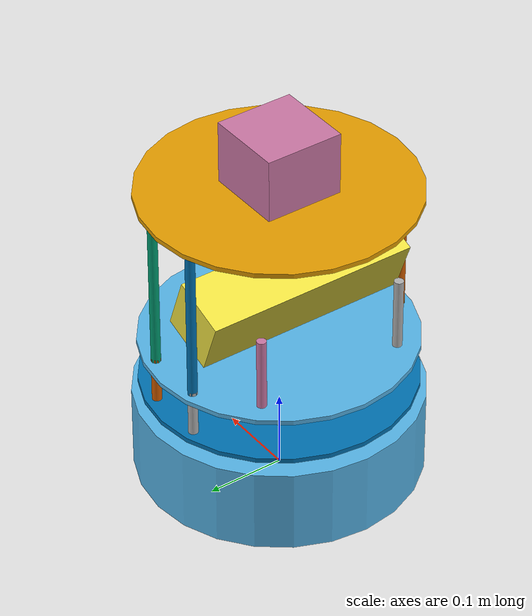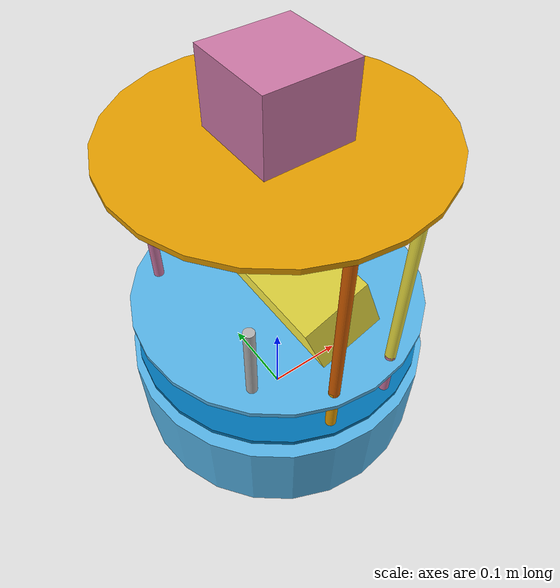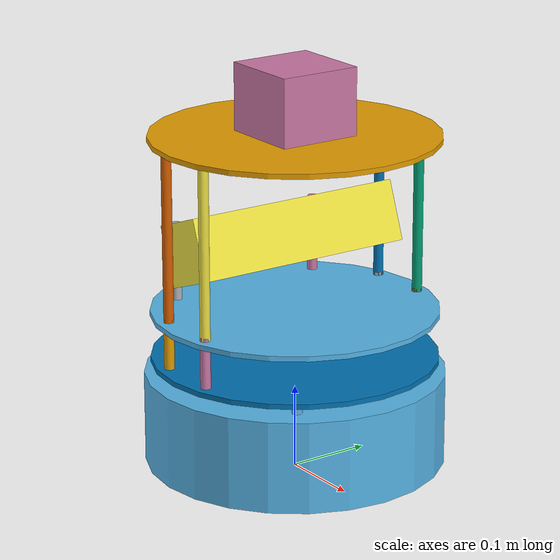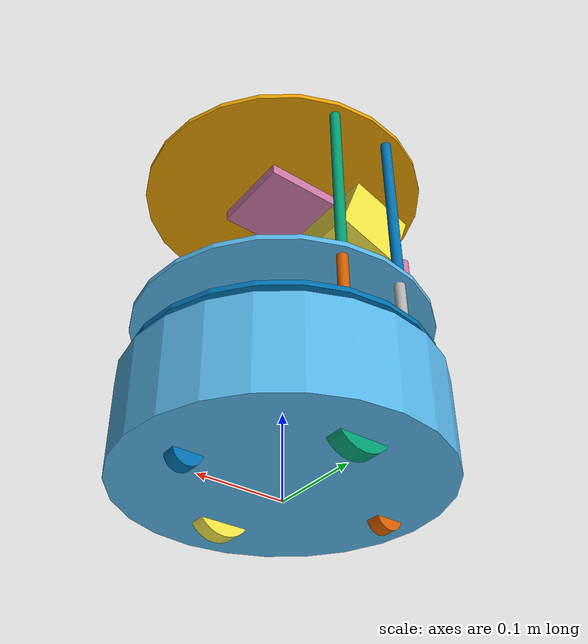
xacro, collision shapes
<?xml version="1.0"?>
<!--
    - Base      : create
    - Stacks    : circles
    - 3d Sensor : kinect
-->
<robot name="scarab" xmlns:xacro="http://ros.org/wiki/xacro">

  <xacro:include filename="$(find scarab_description)/urdf/common_properties.urdf.xacro"/>
  <xacro:include filename="$(find scarab_description)/urdf/turtlebot_properties.urdf.xacro"/>
  <xacro:include filename="$(find scarab_description)/urdf/kobuki.urdf.xacro" />
  <xacro:include filename="$(find scarab_description)/urdf/hexagons.urdf.xacro"/>

  <!-- 3D Sensors -->
  <xacro:include filename="$(find scarab_description)/urdf/sensors/kinect.urdf.xacro"/>
  <xacro:include filename="$(find scarab_description)/urdf/sensors/asus_xtion_pro.urdf.xacro"/>

  <kobuki/>
  <stack_hexagons parent="base_link"/>
  <sensor_kinect  parent="base_link"/>
  <xacro:include filename="$(find scarab_description)/urdf/sensors/hokuyo.gazebo" />

</robot>

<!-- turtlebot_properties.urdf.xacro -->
<robot>
  <!--
    These properties must be observed by any machine
    that wants to be defined as a turtlebot. Refer
    to the REP for more details.

    http://www.ros.org/reps/rep-0119.html
   -->

	<property name="cam_px" value="-0.0" />
	<property name="cam_py" value="-0.0" />
	<property name="cam_pz" value="0.3" />
	<property name="cam_or" value="0" />
	<property name="cam_op" value="-0.357" />
	<property name="cam_oy" value="0" />
</robot>

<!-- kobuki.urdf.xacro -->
<!--
This is not a standalone urdf for kobuki. It simply defines the scarab tag that can
be incorporated by other urdf files (e.g. turtlebot).  -->
<robot name="kobuki" xmlns:xacro="http://ros.org/wiki/xacro">
  <xacro:include filename="$(find scarab_description)/urdf/common_properties.urdf.xacro"/>
  <xacro:include filename="$(find scarab_description)/urdf/kobuki_gazebo.urdf.xacro"/>

  <!-- Kobuki -->
  <xacro:macro name="kobuki">
    <link name="base_footprint"/>
    <joint name="base_joint" type="fixed">
      <origin xyz="0 0 0.0102" rpy="0 0 0" />
      <parent link="base_footprint"/>
      <child link="base_link" />
    </joint>
    <link name="base_link">
      <visual>
        <geometry>
          <!-- new mesh -->
          <mesh filename="package://scarab_description/meshes/kobuki/main_body.dae" />
        </geometry>
        <origin xyz="0.001 0 0.05199" rpy="0 0 0"/>
      </visual>
      <collision>
        <geometry>
          <cylinder length="0.10938" radius="0.178"/>
        </geometry>
        <origin xyz="0.0 0 0.05949" rpy="0 0 0"/>
      </collision>
      <inertial>
        <!-- COM experimentally determined -->
        <origin xyz="0.01 0 0"/>
        <mass value="2.4"/> <!-- 2.4/2.6 kg for small/big battery pack -->
        <inertia ixx="0.019995" ixy="0.0" ixz="0.0"
                 iyy="0.019995" iyz="0.0"
                 izz="0.03675" />
      </inertial>
    </link>

    <joint name="wheel_left_joint" type="continuous">
      <parent link="base_link"/>
      <child link="wheel_left_link"/>
      <origin xyz="0.00 ${0.23/2} 0.0250" rpy="${-M_PI/2} 0 0"/>
      <axis xyz="0 0 1"/>
    </joint>
    <link name="wheel_left_link">
      <visual>
        <geometry>
          <mesh filename="package://scarab_description/meshes/kobuki/wheel.dae"/>
        </geometry>
        <origin xyz="0 0 0" rpy="0 0 0"/>
      </visual>
      <collision>
        <geometry>
          <cylinder length="0.0206" radius="0.0352"/>
        </geometry>
        <origin rpy="0 0 0" xyz="0 0 0"/>
      </collision>
      <inertial>
        <mass value="0.01" />
        <origin xyz="0 0 0" />
        <inertia ixx="0.001" ixy="0.0" ixz="0.0"
                 iyy="0.001" iyz="0.0"
                 izz="0.001" />
      </inertial>
    </link>

    <joint name="wheel_right_joint" type="continuous">
      <parent link="base_link"/>
      <child link="wheel_right_link"/>
      <origin xyz="0.00 -${0.23/2} 0.0250" rpy="${-M_PI/2} 0 0"/>
      <axis xyz="0 0 1"/>
    </joint>
    <link name="wheel_right_link">
      <visual>
        <geometry>
          <mesh filename="package://scarab_description/meshes/kobuki/wheel.dae"/>
        </geometry>
        <origin xyz="0 0 0" rpy="0 0 0"/>
      </visual>
      <collision>
        <geometry>
          <cylinder length="0.0206" radius="0.0350"/>
        </geometry>
        <origin rpy="0 0 0" xyz="0 0 0"/>
      </collision>
      <inertial>
        <mass value="0.01" />
        <origin xyz="0 0 0" />
        <inertia ixx="0.001" ixy="0.0" ixz="0.0"
                 iyy="0.001" iyz="0.0"
                 izz="0.001" />
      </inertial>
    </link>

    <joint name="caster_front_joint" type="fixed">
      <parent link="base_link"/>
      <child link="caster_front_link"/>
      <origin xyz="0.115 0.0 0.007" rpy="${-M_PI/2} 0 0"/>
    </joint>
    <link name="caster_front_link">
      <collision>
        <geometry>
          <cylinder length="0.0176" radius="0.017"/>
        </geometry>
        <origin rpy="0 0 0" xyz="0 0 0"/>
      </collision>
      <inertial>
        <mass value="0.01" />
        <origin xyz="0 0 0" />
        <inertia ixx="0.001" ixy="0.0" ixz="0.0"
                 iyy="0.001" iyz="0.0"
                 izz="0.001" />
      </inertial>
    </link>

    <joint name="caster_back_joint" type="fixed">
      <parent link="base_link"/>
      <child link="caster_back_link"/>
      <origin xyz="-0.135 0.0 0.009" rpy="${-M_PI/2} 0 0"/>
    </joint>
    <link name="caster_back_link">
      <collision>
        <geometry>
          <cylinder length="0.0176" radius="0.017"/>
        </geometry>
        <origin rpy="0 0 0" xyz="0 0 0"/>
      </collision>
      <inertial>
        <mass value="0.01" />
        <origin xyz="0 0 0" />
        <inertia ixx="0.001" ixy="0.0" ixz="0.0"
                 iyy="0.001" iyz="0.0"
                 izz="0.001" />
      </inertial>
    </link>

    <!-- Kobuki Gazebo simulation details -->
    <kobuki_sim/>

  </xacro:macro>
</robot>

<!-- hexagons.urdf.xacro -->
<!--
  Hexagon stacks
 -->
<robot name="stack_hexagons" xmlns:xacro="http://ros.org/wiki/xacro">
  <xacro:include filename="$(find scarab_description)/urdf/common_properties.urdf.xacro"/>

  <!-- Xacro properties -->
  <xacro:property name="M_SCALE" value="0.001"/>

  <!-- Xacro macros -->
  <!-- Pole macros -->
  <xacro:macro name="stack_bottom_pole" params="parent number x_loc y_loc z_loc">
    <joint name="pole_bottom_${number}_joint" type="fixed">
      <origin xyz="${x_loc} ${y_loc} ${z_loc}" rpy="0 0 0"/>
      <parent link="${parent}"/>
      <child link="pole_bottom_${number}_link"/>
    </joint>
    <link name="pole_bottom_${number}_link">
      <visual>
        <origin xyz="0 0 0" rpy="0 0 0"/>
        <geometry>
          <mesh filename="package://scarab_description/meshes/hexagons/pole_bottom.dae"/>
        </geometry>
      </visual>
      <collision>
        <origin xyz="0 0 0" rpy="0 0 0"/>
        <geometry>
          <cylinder length="0.0492" radius=".006"/>
        </geometry>
      </collision>
      <inertial>
        <mass value="0.001"/>
        <origin xyz="0 0 0" rpy="0 0 0"/>
        <inertia ixx="0.0001" ixy="0.0" ixz="0.0"
                 iyy="0.0001" iyz="0.0"
                 izz="0.0001"/>
      </inertial>
    </link>
  </xacro:macro>

  <xacro:macro name="stack_middle_pole" params="parent number x_loc y_loc z_loc">
    <joint name="pole_middle_${number}_joint" type="fixed">
      <origin xyz="${x_loc} ${y_loc} ${z_loc}" rpy="0 0 0" />
      <parent link="${parent}"/>
      <child link="pole_middle_${number}_link"/>
    </joint>
    <link name="pole_middle_${number}_link">
      <visual>
        <origin xyz="0 0 0" rpy="0 ${M_PI} 0"/>
        <geometry>
          <mesh filename="package://scarab_description/meshes/hexagons/pole_middle.dae"/>
        </geometry>
      </visual>
      <collision>
        <origin xyz="0 0 0" rpy="0 0 0"/>
        <geometry>
          <cylinder length="0.0608" radius=".006"/>
        </geometry>
      </collision>
      <inertial>
        <mass value="0.001"/>
        <origin xyz="0 0 0"/>
        <inertia ixx="0.0001" ixy="0.0" ixz="0.0"
                 iyy="0.0001" iyz="0.0"
                 izz="0.0001"/>
      </inertial>
    </link>
  </xacro:macro>

  <xacro:macro name="stack_top_pole" params="parent number x_loc y_loc z_loc">
    <joint name="pole_top_${number}_joint" type="fixed">
      <origin xyz="${x_loc} ${y_loc} ${z_loc}" rpy="0 0 0"/>
      <parent link="${parent}"/>
      <child link="pole_top_${number}_link"/>
    </joint>
    <link name="pole_top_${number}_link">
      <visual>
        <origin xyz=" 0 0 0" rpy="0 0 0"/>
        <geometry>
          <mesh filename="package://scarab_description/meshes/hexagons/pole_top.dae"/>
        </geometry>
      </visual>
      <collision>
        <origin xyz="0 0 0" rpy="0 0 0"/>
        <geometry>
          <cylinder length="0.2032" radius=".006"/>
        </geometry>
      </collision>
      <inertial>
        <mass value="0.001"/>
        <origin xyz="0 0 0"/>
        <inertia ixx="0.0001" ixy="0.0" ixz="0.0"
                 iyy="0.0001" iyz="0.0"
                 izz="0.0001"/>
      </inertial>
    </link>
  </xacro:macro>

  <xacro:macro name="stack_3d_sensor_pole" params="parent number x_loc y_loc z_loc">
    <joint name="pole_kinect_${number}_joint" type="fixed">
      <origin xyz="${x_loc} ${y_loc} ${z_loc}" rpy="0 0 0"/>
      <parent link="${parent}"/>
      <child link="pole_kinect_${number}_link"/>
    </joint>
    <link name="pole_kinect_${number}_link">
      <visual>
        <origin xyz="0 0 0" rpy="0 0 0"/>
        <geometry>
          <mesh filename="package://scarab_description/meshes/hexagons/pole_kinect.dae"/>
        </geometry>
      </visual>
      <collision>
        <origin xyz="0 0 0" rpy="0 0 0"/>
        <geometry>
          <cylinder length="0.0936" radius="0.006"/>
        </geometry>
      </collision>
      <inertial>
        <mass value="0.001"/>
        <origin xyz="0 0 0"/>
        <inertia ixx="0.0001" ixy="0.0" ixz="0.0"
                 iyy="0.0001" iyz="0.0"
                 izz="0.0001"/>
      </inertial>
    </link>
  </xacro:macro>

  <xacro:macro name="stack_hexagons" params="parent">
    <stack_bottom_pole parent="${parent}" number="0" x_loc= "0.120" y_loc= "0.082" z_loc="0.1028"/>
    <stack_bottom_pole parent="${parent}" number="1" x_loc= "0.055" y_loc= "0.120" z_loc="0.1028"/>
    <stack_bottom_pole parent="${parent}" number="2" x_loc="-0.055" y_loc= "0.120" z_loc="0.1028"/>
    <stack_bottom_pole parent="${parent}" number="3" x_loc= "0.120" y_loc="-0.082" z_loc="0.1028"/>
    <stack_bottom_pole parent="${parent}" number="4" x_loc= "0.055" y_loc="-0.120" z_loc="0.1028"/>
    <stack_bottom_pole parent="${parent}" number="5" x_loc="-0.055" y_loc="-0.120" z_loc="0.1028"/>

    <joint name="plate_bottom_joint" type="fixed">
      <origin xyz="0.02364 0.0 0.1306" rpy="0 0 0"/>
      <parent link="${parent}"/>
      <child link="plate_bottom_link"/>
    </joint>
    <link name="plate_bottom_link">
      <visual>
        <origin xyz="0 0 0" rpy="0 0 0"/>
        <geometry>
          <mesh filename="package://scarab_description/meshes/hexagons/plate_bottom.dae"/>
        </geometry>
      </visual>
      <collision>
        <origin xyz="-0.02364 0 0" rpy="0 0 0"/>
        <geometry>
          <cylinder length="0.006" radius="0.170"/>
        </geometry>
      </collision>
      <inertial>
        <mass value="0.01" />
        <origin xyz="0 0 0" />
        <inertia ixx="0.01" ixy="0.0" ixz="0.0"
                 iyy="0.01" iyz="0.0"
                 izz="0.01" />
      </inertial>
    </link>

    <stack_middle_pole parent="${parent}" number="0" x_loc= "0.0381" y_loc= "0.1505" z_loc="0.1640"/>
    <stack_middle_pole parent="${parent}" number="1" x_loc= "0.0381" y_loc="-0.1505" z_loc="0.1640"/>
    <stack_middle_pole parent="${parent}" number="2" x_loc="-0.0381" y_loc= "0.1505" z_loc="0.1640"/>
    <stack_middle_pole parent="${parent}" number="3" x_loc="-0.0381" y_loc="-0.1505" z_loc="0.1640"/>

    <joint name="plate_middle_joint" type="fixed">
      <origin xyz="-0.01364 0.0 0.1874" rpy="0 0 0"/>
      <parent link="${parent}"/>
      <child link="plate_middle_link"/>
    </joint>
    <link name="plate_middle_link">
      <visual>
        <origin xyz="0 0 0" rpy="0 0 0"/>
        <geometry>
          <mesh filename="package://scarab_description/meshes/hexagons/plate_middle.dae"/>
        </geometry>
      </visual>
      <collision>
        <origin xyz="0.01364 0.0 0.0" rpy="0 0 0"/>
        <geometry>
          <cylinder length="0.006" radius="0.170"/>
        </geometry>
      </collision>
      <inertial>
        <mass value="0.01" />
        <origin xyz="0 0 0" />
        <inertia ixx="0.01" ixy="0.0" ixz="0.0"
                 iyy="0.01" iyz="0.0"
                 izz="0.01" />
      </inertial>
    </link>

    <stack_top_pole parent="${parent}" number="0" x_loc= "0.0381" y_loc= "0.1505" z_loc="0.2920"/>
    <stack_top_pole parent="${parent}" number="1" x_loc= "0.0381" y_loc="-0.1505" z_loc="0.2920"/>
    <stack_top_pole parent="${parent}" number="2" x_loc="-0.0381" y_loc= "0.1505" z_loc="0.2920"/>
    <stack_top_pole parent="${parent}" number="3" x_loc="-0.0381" y_loc="-0.1505" z_loc="0.2920"/>
    <stack_3d_sensor_pole parent="${parent}" number="0" x_loc="-0.1024" y_loc= "0.098" z_loc="0.2372"/>
    <stack_3d_sensor_pole parent="${parent}" number="1" x_loc="-0.1024" y_loc="-0.098" z_loc="0.2372"/>

    <joint name="plate_top_joint" type="fixed">
      <origin xyz="-0.01364 0.0  0.3966" rpy="0 0 0"/>
      <parent link="${parent}"/>
      <child link="plate_top_link"/>
    </joint>
    <link name="plate_top_link">
      <visual>
        <origin xyz="0 0 0" rpy="0 0 0"/>
        <geometry>
          <mesh filename="package://scarab_description/meshes/hexagons/plate_top.dae"/>
        </geometry>
      </visual>
      <collision>
        <origin xyz="0.01364 0 0" rpy="0 0 0"/>
        <geometry>
          <cylinder length="0.006" radius="0.170"/>
        </geometry>
      </collision>
      <inertial>
        <mass value="0.01"/>
        <origin xyz="0 0 0"/>
        <inertia ixx="0.01" ixy="0.0" ixz="0.0"
                 iyy="0.01" iyz="0.0"
                 izz="0.01" />
      </inertial>
    </link>
  </xacro:macro>
</robot>

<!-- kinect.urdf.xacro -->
<robot name="sensor_kinect" xmlns:xacro="http://ros.org/wiki/xacro">
  <xacro:include filename="$(find scarab_description)/urdf/turtlebot_gazebo.urdf.xacro"/>
  <xacro:include filename="$(find scarab_description)/urdf/turtlebot_properties.urdf.xacro"/>

  <!-- Parameterised in part by the values in turtlebot_properties.urdf.xacro -->
  <xacro:macro name="sensor_kinect" params="parent">
    <joint name="camera_rgb_joint" type="fixed">
      <origin xyz="${cam_px} ${cam_py} ${cam_pz}" rpy="${cam_or} ${cam_op} ${cam_oy}"/>
      <parent link="${parent}"/>
      <child link="camera_rgb_frame" />
    </joint>
    <link name="camera_rgb_frame">
      <inertial>
        <mass value="0.001" />
        <origin xyz="0 0 0" />
        <inertia ixx="0.0001" ixy="0.0" ixz="0.0"
                 iyy="0.0001" iyz="0.0"
                 izz="0.0001" />
      </inertial>
    </link>
    <joint name="camera_rgb_optical_joint" type="fixed">
      <origin xyz="0 0 0" rpy="${-M_PI/2} 0 ${-M_PI/2}" />
      <parent link="camera_rgb_frame" />
      <child link="camera_rgb_optical_frame" />
    </joint>
    <link name="camera_rgb_optical_frame">
      <inertial>
        <mass value="0.001" />
        <origin xyz="0 0 0" />
        <inertia ixx="0.0001" ixy="0.0" ixz="0.0"
                 iyy="0.0001" iyz="0.0"
                 izz="0.0001" />
      </inertial>
    </link>

  <joint name="camera_joint" type="fixed">
    <origin xyz="-0.031 ${-cam_py} -0.016" rpy="0 0 0"/>
    <parent link="camera_rgb_frame"/>
    <child link="camera_link"/>
  </joint>
    <link name="camera_link">
    <visual>
     <origin xyz="0 0 0" rpy="0 0 ${M_PI/2}"/>
      <geometry>
       <mesh filename="package://scarab_description/meshes/sensors/kinect.dae"/>
      </geometry>
    </visual>
	  <collision>
      <origin xyz="0.0 0.0 0.0" rpy="0 0 0"/>
	    <geometry>
	      <box size="0.07271 0.27794 0.073"/>
	    </geometry>
	  </collision>
    <inertial>
      <mass value="0.001" />
      <origin xyz="0 0 0" />
      <inertia ixx="0.0001" ixy="0.0" ixz="0.0"
               iyy="0.0001" iyz="0.0"
               izz="0.0001" />
    </inertial>
  </link>

	<joint name="camera_depth_joint" type="fixed">
	  <origin xyz="0 ${2 * -cam_py} 0" rpy="0 0 0" />
	  <parent link="camera_rgb_frame" />
	  <child link="camera_depth_frame" />
	</joint>
	<link name="camera_depth_frame">
    <inertial>
      <mass value="0.001" />
      <origin xyz="0 0 0" />
      <inertia ixx="0.0001" ixy="0.0" ixz="0.0"
               iyy="0.0001" iyz="0.0"
               izz="0.0001" />
    </inertial>
	</link>
	<joint name="camera_depth_optical_joint" type="fixed">
	  <origin xyz="0 0 0" rpy="${-M_PI/2} 0 ${-M_PI/2}" />
	  <parent link="camera_depth_frame" />
	  <child link="camera_depth_optical_frame" />
	</joint>
	<link name="camera_depth_optical_frame">
    <inertial>
      <mass value="0.001" />
      <origin xyz="0 0 0" />
      <inertia ixx="0.0001" ixy="0.0" ixz="0.0"
               iyy="0.0001" iyz="0.0"
               izz="0.0001" />
    </inertial>
	</link>

	<!-- Kinect sensor for simulation -->
	<turtlebot_sim_3dsensor/>
  </xacro:macro>
</robot>

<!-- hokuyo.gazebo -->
<robot>
  <joint name="hokuyo_joint" type="fixed">
    <axis xyz="0 1 0" />
    <origin xyz="${cam_px} ${cam_py} 0.43" rpy="0 0 0"/>
    <parent link="base_link"/>
    <child link="hokuyo_link"/>
  </joint>

  <!-- Hokuyo Laser -->
  <link name="hokuyo_link">
    <collision>
      <origin xyz="0 0 0" rpy="0 0 0"/>
      <geometry>
	<box size="0.1 0.1 0.1"/>
      </geometry>
    </collision>

    <visual>
      <origin xyz="0 0 0" rpy="0 0 0"/>
      <geometry>
        <mesh filename="package://scarab_description/meshes/sensors/hokuyo.dae"/>
      </geometry>
    </visual>

    <inertial>
      <mass value="1e-5" />
      <origin xyz="0 0 0" rpy="0 0 0"/>
      <inertia ixx="1e-6" ixy="0" ixz="0" iyy="1e-6" iyz="0" izz="1e-6" />
    </inertial>
  </link>

  <!-- Simulate UTM-30LX -->
  <gazebo reference="hokuyo_link">
    <sensor type="gpu_ray" name="head_hokuyo_sensor">
      <pose>0 0 0 0 0 0</pose>
      <visualize>false</visualize>
      <update_rate>20</update_rate>
      <ray>
        <scan>
          <horizontal>
            <samples>1024</samples>
            <resolution>1</resolution>
            <!-- +/- 135 degrees -->
            <min_angle>-2.356194</min_angle>
            <max_angle>2.356194</max_angle>
          </horizontal>
        </scan>
        <range>
          <min>0.10</min>
          <max>30.0</max>
          <resolution>0.01</resolution>
        </range>
        <noise>
          <type>gaussian</type>
          <mean>0.0</mean>
          <stddev>0.01</stddev>
        </noise>
      </ray>
      <plugin name="gazebo_ros_head_hokuyo_controller" filename="libgazebo_ros_gpu_laser.so">
        <topicName>scan</topicName>
        <frameName>hokuyo_link</frameName>
      </plugin>
    </sensor>
  </gazebo>
</robot>
